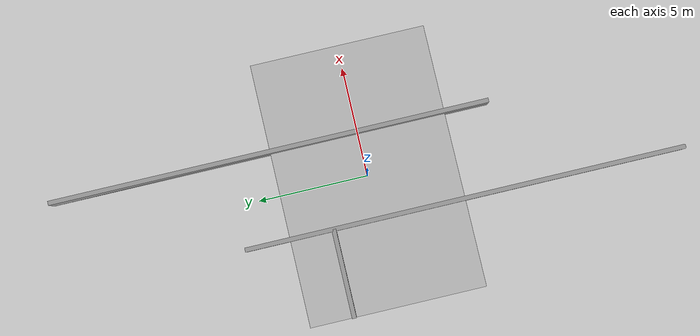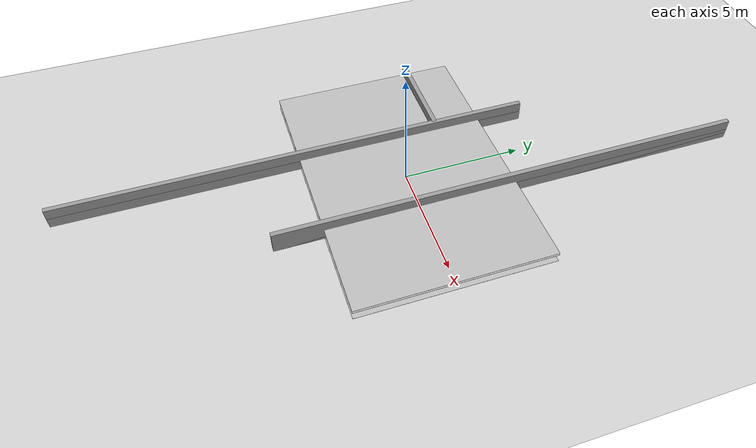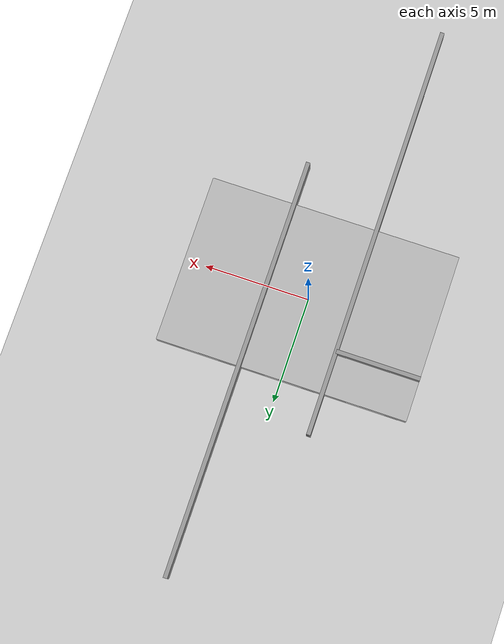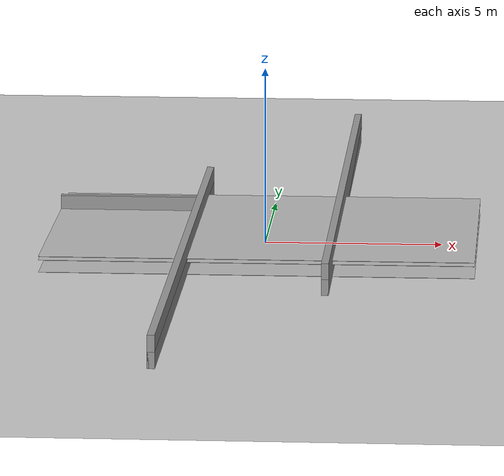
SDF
<?xml version="1.0"?>
<sdf version="1.8">
  <world name="my_world">
    <plugin
      filename="gz-sim-physics-system"
      name="gz::sim::systems::Physics">
    </plugin>
    <plugin
      filename="gz-sim-sensors-system"
      name="gz::sim::systems::Sensors">
      <render_engine>ogre2</render_engine>
    </plugin>
    <plugin
      filename="gz-sim-scene-broadcaster-system"
      name="gz::sim::systems::SceneBroadcaster">
    </plugin>
    <plugin
      filename="gz-sim-user-commands-system"
      name="gz::sim::systems::UserCommands">
    </plugin>

    <plugin filename="gz-sim-imu-system"
        name="gz::sim::systems::Imu">
    </plugin>

    <model name="ground_plane">
      <static>true</static>
      <link name="link">
        <collision name="collision">
          <geometry>
            <plane>
              <normal>0 0 1</normal>
              <size>100 100</size>
            </plane>
          </geometry>
        </collision>
        <visual name="visual">
          <geometry>
            <plane>
              <normal>0 0 1</normal>
              <size>100 100</size>
            </plane>
          </geometry>
          <material>
            <ambient>0.8 0.8 0.8 1</ambient>
            <diffuse>0.8 0.8 0.8 1</diffuse>
            <specular>0.8 0.8 0.8 1</specular>
          </material>
        </visual>
      </link>
    </model>

    <model name="accel">
      <self_collide>true</self_collide>
      <pose>0 0 0.35 0 0 0</pose>
      <include merge="true">
          <uri>model://accel_description/models/accel/model.sdf</uri>
      </include>

       <plugin
        filename="gz-sim-joint-state-publisher-system"
        name="gz::sim::systems::JointStatePublisher">
      </plugin>

      <plugin
        filename="gz-sim-pose-publisher-system"
        name="gz::sim::systems::PosePublisher">
        <publish_link_pose>true</publish_link_pose>
        <use_pose_vector_msg>true</use_pose_vector_msg>
        <static_publisher>false</static_publisher>
        <static_update_frequency>1</static_update_frequency>
      </plugin>

      <plugin
          filename="gz-sim-odometry-publisher-system"
          name="gz::sim::systems::OdometryPublisher">
          <odom_frame>odom</odom_frame>
          <robot_base_frame>accel</robot_base_frame>
      </plugin>
    </model>

    <include>
      <name>warehouse</name>
      <pose>0 0 -0.09 0 0 0</pose>
      <uri>model://accel_description/worlds/warehouse/model.sdf</uri>
    </include>

  </world>
</sdf>

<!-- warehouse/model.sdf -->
<sdf version="1.7">
    <!-- Original: Warehouse Model -->
    <model name="warehouse">
        <pose>0 0 0 0 0 0</pose>
        <static>1</static>

        <!-- Original: Base warehouse structure -->
        <link name="warehouse_base">
            <pose>0 0 0 0 0 0</pose>
            <collision name="warehouse_collision">
                <geometry>
                    <mesh>
                        <scale>1 1 1</scale>
                        <uri>meshes/warehouse_colision.stl</uri>
                    </mesh>
                </geometry>
            </collision>
            <visual name="warehouse_visual">
                <geometry>
                    <mesh>
                        <scale>1 1 1</scale>
                        <uri>meshes/warehouse.dae</uri>
                    </mesh>
                </geometry>
            </visual>
            <visual name="drop_area_visual">
                <pose>0 0 0.101 0 0 0</pose>
                <geometry>
                    <mesh>
                        <scale>1 1 1</scale>
                        <uri>meshes/warehouse.dae</uri>
                        <submesh>
                            <name>drop1</name>
                            <center>true</center>
                        </submesh>
                    </mesh>
                </geometry>
            </visual>
        </link>

        <!-- New Addition: Maze Walls -->
        <!-- Wall 1: Horizontal wall -->

        Wall 2: Vertical wall
        <link name="wall2">
            <pose>2 4 0 0 0 0</pose>
            <collision name="wall2_collision">
                <geometry>
                    <box>
                        <size>0.2 20 1</size>
                    </box>
                </geometry>
            </collision>
            <visual name="wall2_visual">
                <geometry>
                    <box>
                        <size>0.2 20 1</size>
                    </box>
                </geometry>
                <material>
                    <ambient>0.6 0.6 0.6 1</ambient>
                </material>
            </visual>
        </link>

        <!-- Wall 3: Another horizontal wall -->
        <link name="wall3">
            <pose>-4 2 0 0 0 0</pose>
            <collision name="wall3_collision">
                <geometry>
                    <box>
                        <size>4 0.2 1</size>
                    </box>
                </geometry>
            </collision>
            <visual name="wall3_visual">
                <geometry>
                    <box>
                        <size>4 0.2 1</size>
                    </box>
                </geometry>
                <material>
                    <ambient>0.6 0.6 0.6 1</ambient>
                </material>
            </visual>
        </link>

        <!-- Wall 4: Another vertical wall -->
        <link name="wall4">
            <pose>-2 -4 0 0 0 0</pose>
            <collision name="wall4_collision">
                <geometry>
                    <box>
                        <size>0.2 20 1</size>
                    </box>
                </geometry>
            </collision>
            <visual name="wall4_visual">
                <geometry>
                    <box>
                        <size>0.2 20 1</size>
                    </box>
                </geometry>
                <material>
                    <ambient>0.6 0.6 0.6 1</ambient>
                </material>
            </visual>
        </link>
    </model>
</sdf>
